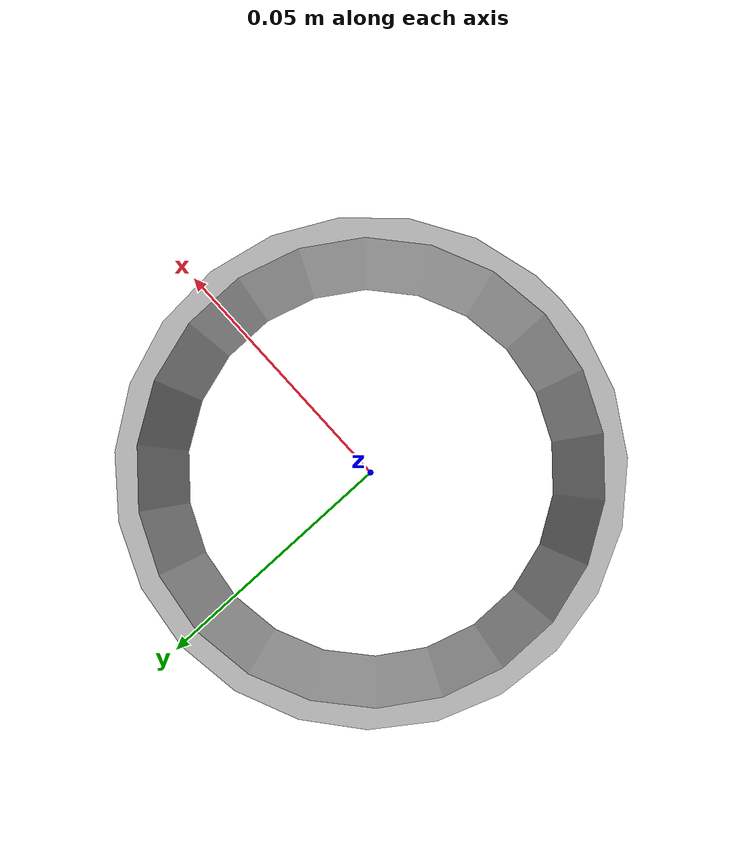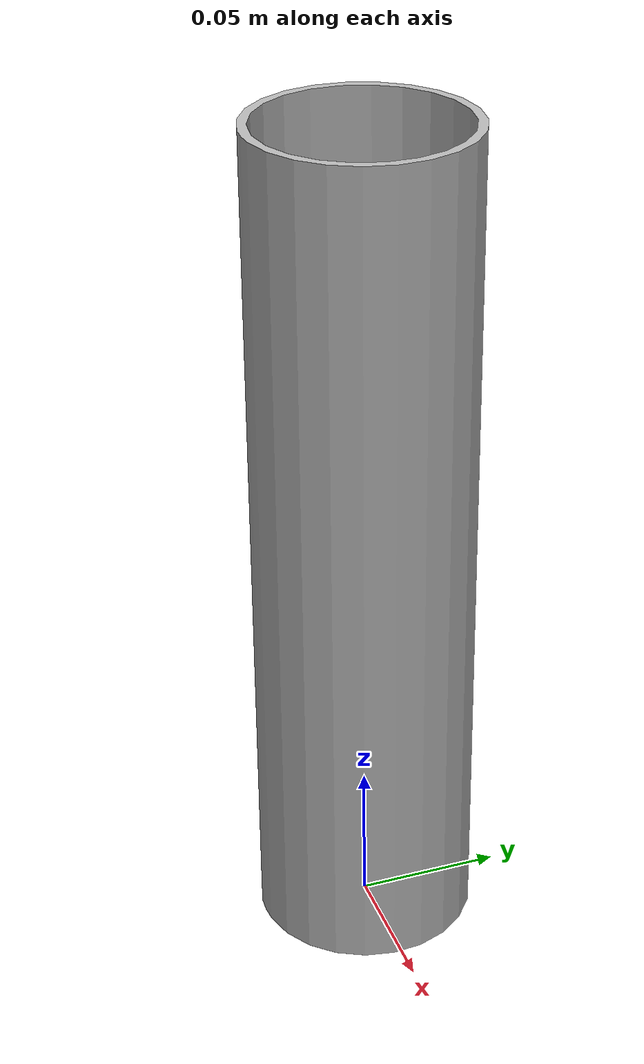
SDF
<sdf version='1.6'>
  <model name='Cone0'>
    <link name='Cone0'>
      <pose frame=''>0 0 0 0 -0 0</pose>
      <inertial>
        <pose frame=''>0 0 0.14605 0 -0 0</pose>
        <mass>1.6596</mass>
        <inertia>
          <ixx>0.0129081</ixx>
          <ixy>-4.06709e-35</ixy>
          <ixz>2.05612e-34</ixz>
          <iyy>0.0129081</iyy>
          <iyz>-6.5464e-19</iyz>
          <izz>0.00221664</izz>
        </inertia>
      </inertial>
      <collision name='Cone0_collision'>
	<!-- Change max_vel and/or min_depth to keep cones from "bouncing" -->
	<surface>
	  <contact>
	    <ode>
	      <min_depth>0.001</min_depth>
	    </ode>
	  </contact>
	</surface>
        <pose frame=''>0 0 0 1.5708 -0 0</pose>
        <geometry>
          <mesh>
            <scale>1 1 1</scale>
            <uri>model://Cone0/meshes/Cone0.STL</uri>
          </mesh>
        </geometry>
      </collision>
      <visual name='Cone0_visual'>
        <pose frame=''>0 0 0 1.5708 -0 0</pose>
        <geometry>
          <mesh>
            <scale>1 1 1</scale>
            <uri>model://Cone0/meshes/Cone0.STL</uri>
          </mesh>
        </geometry>
      </visual>
    </link>
  </model>
</sdf>
